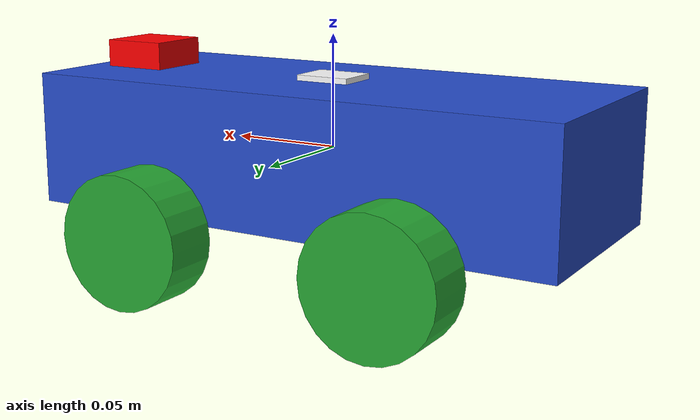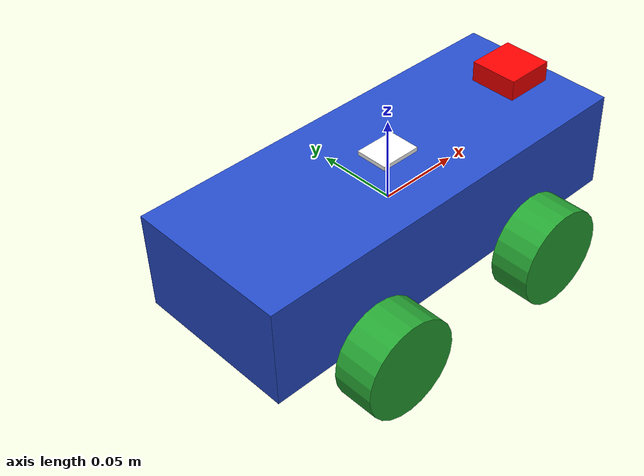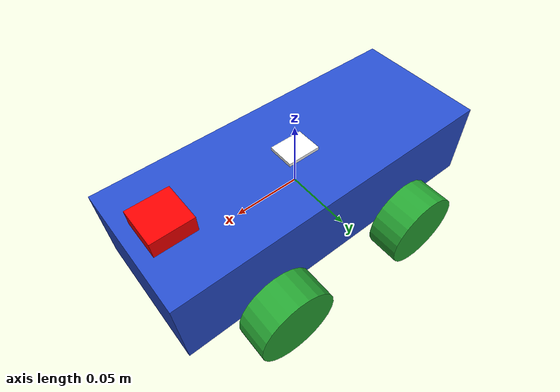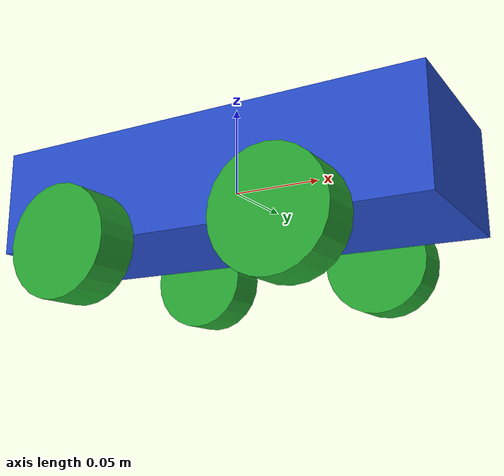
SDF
<sdf version='1.9'>
  <model name='levibot'>
    <link name='base_link'>
      <inertial>
        <pose>0.0006916996047430832 0 0.0003557312252964427 0 0 0</pose>
        <mass>1.012</mass>
        <inertia>
          <ixx>0.001145071936758893</ixx>
          <ixy>0</ixy>
          <ixz>-2.0750988142292491e-05</ixz>
          <iyy>0.0055896814970355733</iyy>
          <iyz>0</iyz>
          <izz>0.0061126595602766813</izz>
        </inertia>
      </inertial>
      <collision name='base_link_fixed_joint_lump__chassis_collision'>
        <pose>0 0 0 0 0 0</pose>
        <geometry>
          <box>
            <size>0.25 0.1 0.06</size>
          </box>
        </geometry>
        <surface>
          <contact>
            <ode/>
          </contact>
          <friction>
            <ode/>
          </friction>
        </surface>
      </collision>
      <collision name='base_link_fixed_joint_lump__imu_link_collision_1'>
        <pose>0 0 0.03 0 0 0</pose>
        <geometry>
          <box>
            <size>0.025 0.02 0.005</size>
          </box>
        </geometry>
      </collision>
      <collision name='base_link_fixed_joint_lump__lidar_link_collision_2'>
        <pose>0.1 0 0.03 0 0 0</pose>
        <geometry>
          <box>
            <size>0.03 0.03 0.025</size>
          </box>
        </geometry>
        <surface>
          <contact>
            <ode/>
          </contact>
          <friction>
            <ode/>
          </friction>
        </surface>
      </collision>
      <visual name='base_link_fixed_joint_lump__chassis_visual'>
        <pose>0 0 0 0 0 0</pose>
        <geometry>
          <box>
            <size>0.25 0.1 0.06</size>
          </box>
        </geometry>
        <material>
          <script>
            <name>Gazebo/Blue</name>
            <uri>file://media/materials/scripts/gazebo.material</uri>
          </script>
          <diffuse>0 0 1 1</diffuse>
          <ambient>0 0 1 1</ambient>
        </material>
      </visual>
      <visual name='base_link_fixed_joint_lump__imu_link_visual_1'>
        <pose>0 0 0.03 0 0 0</pose>
        <geometry>
          <box>
            <size>0.025 0.02 0.005</size>
          </box>
        </geometry>
        <material>
          <diffuse>1 1 1 1</diffuse>
          <ambient>1 1 1 1</ambient>
        </material>
      </visual>
      <visual name='base_link_fixed_joint_lump__lidar_link_visual_2'>
        <pose>0.1 0 0.03 0 0 0</pose>
        <geometry>
          <box>
            <size>0.03 0.03 0.025</size>
          </box>
        </geometry>
        <material>
          <diffuse>1 0 0 1</diffuse>
          <ambient>1 0 0 1</ambient>
        </material>
      </visual>
      <sensor name='lidar_sensor' type='gpu_lidar'>
        <topic>scan</topic>
        <update_rate>10</update_rate>
        <lidar>
          <scan>
            <horizontal>
              <samples>640</samples>
              <resolution>1</resolution>
              <min_angle>-1.396263</min_angle>
              <max_angle>1.396263</max_angle>
            </horizontal>
            <vertical>
              <samples>1</samples>
              <resolution>1</resolution>
              <min_angle>0</min_angle>
              <max_angle>0</max_angle>
            </vertical>
          </scan>
          <range>
            <min>0.080000000000000002</min>
            <max>10</max>
            <resolution>0.01</resolution>
          </range>
        </lidar>
        <visualize>true</visualize>
        <pose>0.1 0 0.03 0 -0 0</pose>
      </sensor>
    </link>
    <joint name='fl_wheel_joint' type='revolute'>
      <pose relative_to='base_link'>0.06 0.065 -0.035 -1.570796326794896 0 0</pose>
      <parent>base_link</parent>
      <child>fl_wheel_link</child>
      <axis>
        <xyz>0 0 1</xyz>
        <limit>
          <lower>-10000000000000000</lower>
          <upper>10000000000000000</upper>
        </limit>
        <dynamics>
          <spring_reference>0</spring_reference>
          <spring_stiffness>0</spring_stiffness>
        </dynamics>
      </axis>
    </joint>
    <link name='fl_wheel_link'>
      <pose relative_to='fl_wheel_joint'>0 0 0 0 0 0</pose>
      <inertial>
        <pose>0 0 0 0 0 0</pose>
        <mass>0.10000000000000001</mass>
        <inertia>
          <ixx>2.770833333333333e-05</ixx>
          <ixy>0</ixy>
          <ixz>0</ixz>
          <iyy>2.770833333333333e-05</iyy>
          <iyz>0</iyz>
          <izz>4.5000000000000003e-05</izz>
        </inertia>
      </inertial>
      <collision name='fl_wheel_link_collision'>
        <pose>0 0 0 0 0 0</pose>
        <geometry>
          <cylinder>
            <length>0.025000000000000001</length>
            <radius>0.029999999999999999</radius>
          </cylinder>
        </geometry>
        <surface>
          <contact>
            <ode/>
          </contact>
          <friction>
            <ode>
              <mu>0.20000000000000001</mu>
              <mu2>0.20000000000000001</mu2>
            </ode>
          </friction>
        </surface>
      </collision>
      <visual name='fl_wheel_link_visual'>
        <pose>0 0 0 0 0 0</pose>
        <geometry>
          <cylinder>
            <length>0.025000000000000001</length>
            <radius>0.029999999999999999</radius>
          </cylinder>
        </geometry>
        <material>
          <script>
            <name>Gazebo/Green</name>
            <uri>file://media/materials/scripts/gazebo.material</uri>
          </script>
          <diffuse>0 1 0 1</diffuse>
          <ambient>0 1 0 1</ambient>
        </material>
      </visual>
    </link>
    <joint name='fr_wheel_joint' type='revolute'>
      <pose relative_to='base_link'>0.06 -0.065 -0.035 1.570796326794896 0 0</pose>
      <parent>base_link</parent>
      <child>fr_wheel_link</child>
      <axis>
        <xyz>0 0 -1</xyz>
        <limit>
          <lower>-10000000000000000</lower>
          <upper>10000000000000000</upper>
        </limit>
        <dynamics>
          <spring_reference>0</spring_reference>
          <spring_stiffness>0</spring_stiffness>
        </dynamics>
      </axis>
    </joint>
    <link name='fr_wheel_link'>
      <pose relative_to='fr_wheel_joint'>0 0 0 0 0 0</pose>
      <inertial>
        <pose>0 0 0 0 0 0</pose>
        <mass>0.10000000000000001</mass>
        <inertia>
          <ixx>2.770833333333333e-05</ixx>
          <ixy>0</ixy>
          <ixz>0</ixz>
          <iyy>2.770833333333333e-05</iyy>
          <iyz>0</iyz>
          <izz>4.5000000000000003e-05</izz>
        </inertia>
      </inertial>
      <collision name='fr_wheel_link_collision'>
        <pose>0 0 0 0 0 0</pose>
        <geometry>
          <cylinder>
            <length>0.025000000000000001</length>
            <radius>0.029999999999999999</radius>
          </cylinder>
        </geometry>
        <surface>
          <contact>
            <ode/>
          </contact>
          <friction>
            <ode>
              <mu>0.20000000000000001</mu>
              <mu2>0.20000000000000001</mu2>
            </ode>
          </friction>
        </surface>
      </collision>
      <visual name='fr_wheel_link_visual'>
        <pose>0 0 0 0 0 0</pose>
        <geometry>
          <cylinder>
            <length>0.025000000000000001</length>
            <radius>0.029999999999999999</radius>
          </cylinder>
        </geometry>
        <material>
          <script>
            <name>Gazebo/Green</name>
            <uri>file://media/materials/scripts/gazebo.material</uri>
          </script>
          <diffuse>0 1 0 1</diffuse>
          <ambient>0 1 0 1</ambient>
        </material>
      </visual>
    </link>
    <joint name='rl_wheel_joint' type='revolute'>
      <pose relative_to='base_link'>-0.06 0.065 -0.035 -1.570796326794896 0 0</pose>
      <parent>base_link</parent>
      <child>rl_wheel_link</child>
      <axis>
        <xyz>0 0 1</xyz>
        <limit>
          <lower>-10000000000000000</lower>
          <upper>10000000000000000</upper>
        </limit>
        <dynamics>
          <spring_reference>0</spring_reference>
          <spring_stiffness>0</spring_stiffness>
        </dynamics>
      </axis>
    </joint>
    <link name='rl_wheel_link'>
      <pose relative_to='rl_wheel_joint'>0 0 0 0 0 0</pose>
      <inertial>
        <pose>0 0 0 0 0 0</pose>
        <mass>0.10000000000000001</mass>
        <inertia>
          <ixx>2.770833333333333e-05</ixx>
          <ixy>0</ixy>
          <ixz>0</ixz>
          <iyy>2.770833333333333e-05</iyy>
          <iyz>0</iyz>
          <izz>4.5000000000000003e-05</izz>
        </inertia>
      </inertial>
      <collision name='rl_wheel_link_collision'>
        <pose>0 0 0 0 0 0</pose>
        <geometry>
          <cylinder>
            <length>0.025000000000000001</length>
            <radius>0.029999999999999999</radius>
          </cylinder>
        </geometry>
        <surface>
          <contact>
            <ode/>
          </contact>
          <friction>
            <ode>
              <mu>0.20000000000000001</mu>
              <mu2>0.20000000000000001</mu2>
            </ode>
          </friction>
        </surface>
      </collision>
      <visual name='rl_wheel_link_visual'>
        <pose>0 0 0 0 0 0</pose>
        <geometry>
          <cylinder>
            <length>0.025000000000000001</length>
            <radius>0.029999999999999999</radius>
          </cylinder>
        </geometry>
        <material>
          <script>
            <name>Gazebo/Green</name>
            <uri>file://media/materials/scripts/gazebo.material</uri>
          </script>
          <diffuse>0 1 0 1</diffuse>
          <ambient>0 1 0 1</ambient>
        </material>
      </visual>
    </link>
    <joint name='rr_wheel_joint' type='revolute'>
      <pose relative_to='base_link'>-0.06 -0.065 -0.035 1.570796326794896 0 0</pose>
      <parent>base_link</parent>
      <child>rr_wheel_link</child>
      <axis>
        <xyz>0 0 -1</xyz>
        <limit>
          <lower>-10000000000000000</lower>
          <upper>10000000000000000</upper>
        </limit>
        <dynamics>
          <spring_reference>0</spring_reference>
          <spring_stiffness>0</spring_stiffness>
        </dynamics>
      </axis>
    </joint>
    <link name='rr_wheel_link'>
      <pose relative_to='rr_wheel_joint'>0 0 0 0 0 0</pose>
      <inertial>
        <pose>0 0 0 0 0 0</pose>
        <mass>0.10000000000000001</mass>
        <inertia>
          <ixx>2.770833333333333e-05</ixx>
          <ixy>0</ixy>
          <ixz>0</ixz>
          <iyy>2.770833333333333e-05</iyy>
          <iyz>0</iyz>
          <izz>4.5000000000000003e-05</izz>
        </inertia>
      </inertial>
      <collision name='rr_wheel_link_collision'>
        <pose>0 0 0 0 0 0</pose>
        <geometry>
          <cylinder>
            <length>0.025000000000000001</length>
            <radius>0.029999999999999999</radius>
          </cylinder>
        </geometry>
        <surface>
          <contact>
            <ode/>
          </contact>
          <friction>
            <ode>
              <mu>0.20000000000000001</mu>
              <mu2>0.20000000000000001</mu2>
            </ode>
          </friction>
        </surface>
      </collision>
      <visual name='rr_wheel_link_visual'>
        <pose>0 0 0 0 0 0</pose>
        <geometry>
          <cylinder>
            <length>0.025000000000000001</length>
            <radius>0.029999999999999999</radius>
          </cylinder>
        </geometry>
        <material>
          <script>
            <name>Gazebo/Green</name>
            <uri>file://media/materials/scripts/gazebo.material</uri>
          </script>
          <diffuse>0 1 0 1</diffuse>
          <ambient>0 1 0 1</ambient>
        </material>
      </visual>
    </link>
    <plugin name='gz_ros2_control::GazeboSimROS2ControlPlugin' filename='libgz_ros2_control-system.so'>
      <parameters>/home/sayed/ros_rolling_ws/src/levibot/levibot_skidsteer/simulation/config/gz_controllers.yaml</parameters>
      <controller_manager_prefix_node_name>controller_manager</controller_manager_prefix_node_name>
      <ros>
        <remapping>/base_controller/cmd_vel_unstamped:=/cmd_vel</remapping>
        <remapping>/base_controller/odom:=/odom</remapping>
      </ros>
    </plugin>
    <frame name='chassis_joint' attached_to='base_link'>
      <pose>0 0 0 0 -0 0</pose>
    </frame>
    <frame name='chassis' attached_to='chassis_joint'/>
    <frame name='imu_joint' attached_to='base_link'>
      <pose>0 0 0.03 0 -0 0</pose>
    </frame>
    <frame name='imu_link' attached_to='imu_joint'/>
    <frame name='lidar_joint' attached_to='base_link'>
      <pose>0.1 0 0.03 0 -0 0</pose>
    </frame>
    <frame name='lidar_link' attached_to='lidar_joint'/>
  </model>
</sdf>
